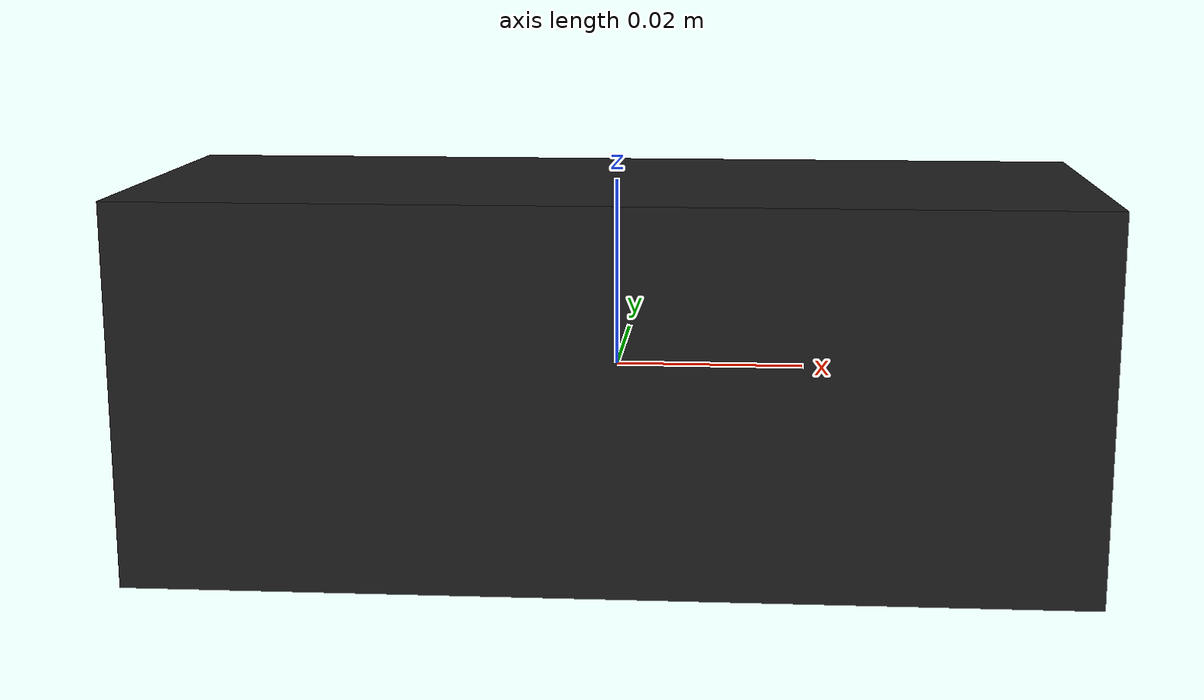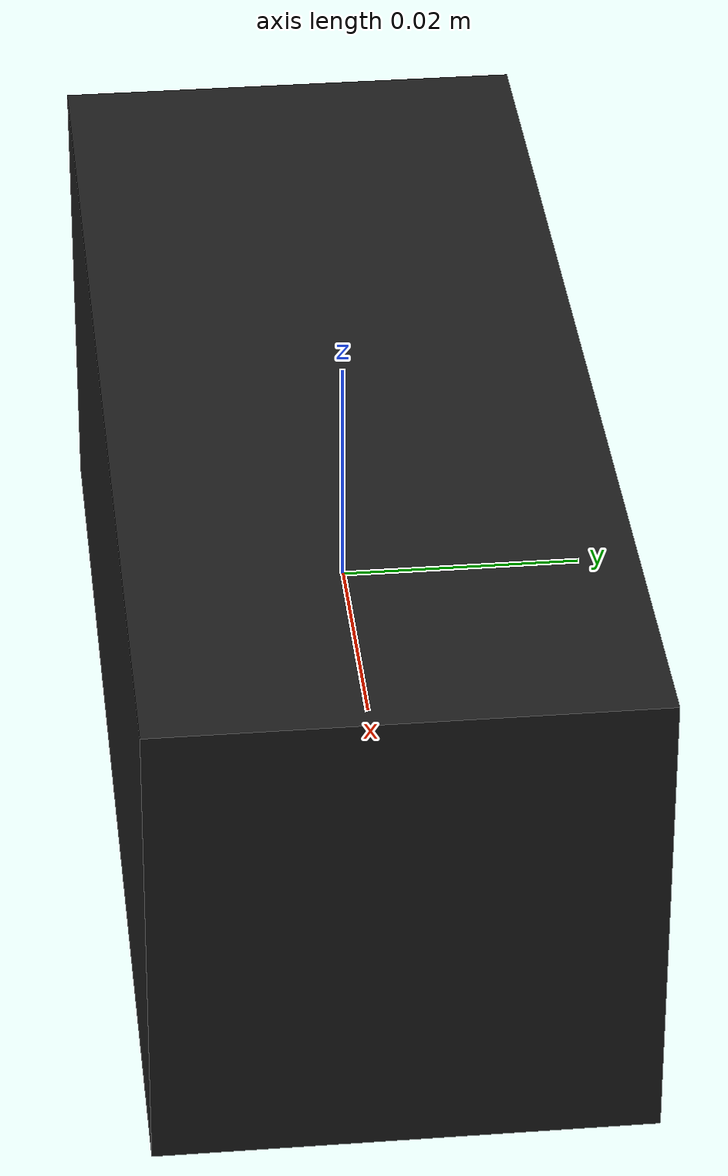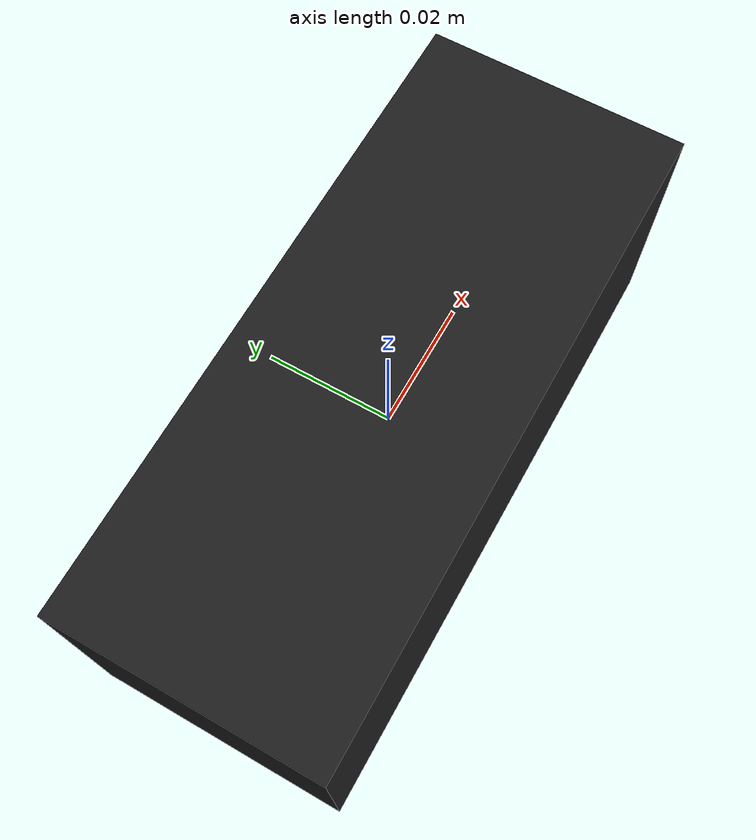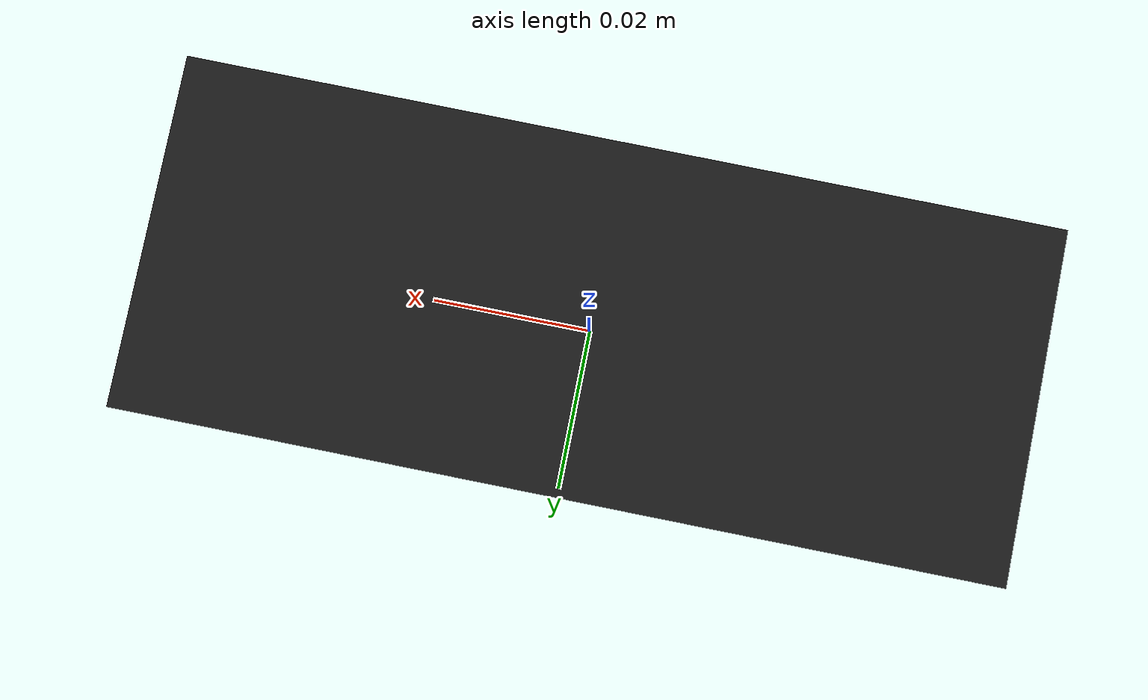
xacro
<?xml version="1.0"?>
<robot name="camera_in_sky" xmlns:xacro="http://www.ros.org/wiki/xacro">

    <xacro:property name="PI"   value="3.141592653" />
    <xacro:include filename="$(find cam_apriltag_gazebo)/urdf/xacro/camera_gazebo.xacro" />

    <!-- Camera -->
    <xacro:usb_camera prefix="camera_sky"/>

</robot>

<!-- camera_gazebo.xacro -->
<robot xmlns:xacro="http://www.ros.org/wiki/xacro" name="camera">

    <xacro:macro name="usb_camera" params="prefix:=camera">
        <!-- Create laser reference frame -->
        <link name="${prefix}_link">
            <inertial>
                <mass value="0.1" />
                <origin xyz="0 0 0" />
                <inertia ixx="1e-6" ixy="0.0" ixz="0.0"
                         iyy="1e-6" iyz="0.0"
                         izz="1e-6" />
            </inertial>

            <visual>
                <origin xyz=" 0 0 0 " rpy="0 0 0" />
                <geometry>
                    <box size="0.1 0.04 0.04" />
                </geometry>
                <material name="black"/>
            </visual>

            <collision>
                <origin xyz="0.0 0.0 0.0" rpy="0 0 0" />
                <geometry>
                    <box size="0.1 0.04 0.04" />
                </geometry>
            </collision>
        </link>
        <link name="${prefix}_link_optical" />
        <joint name="${prefix}_optical_joint" type="fixed">
            <origin rpy="-1.57079632679 0 -1.57079632679" xyz="0 0 0" />
            <parent link="${prefix}_link" />
            <child link="${prefix}_link_optical" />
        </joint>

        <gazebo reference="${prefix}_link">
            <material>Gazebo/Black</material>
        </gazebo>

        <gazebo reference="${prefix}_link">
            <sensor type="camera" name="camera_node">
                <update_rate>10.0</update_rate>
                <camera name="head">
                    <horizontal_fov>1.3962634</horizontal_fov>
                    <image>
                        <width>1800</width>
                        <height>1800</height>
                        <format>R8G8B8</format>
                    </image>
                    <clip>
                        <near>0.02</near>
                        <far>300</far>
                    </clip>
                    <noise>
                        <type>gaussian</type>
                        <mean>0.0</mean>
                        <stddev>0.007</stddev>
                    </noise>
                </camera>
                <plugin name="gazebo_camera" filename="libgazebo_ros_camera.so">
                    <alwaysOn>true</alwaysOn>
                    <updateRate>0.0</updateRate>
                    <cameraName>/${prefix}</cameraName>
                    <imageTopicName>image_raw</imageTopicName>
                    <cameraInfoTopicName>camera_info</cameraInfoTopicName>
                    <frameName>${prefix}_link_optical</frameName>
                    <hackBaseline>0.0</hackBaseline>
                    <distortionK1>0.0</distortionK1>
                    <distortionK2>0.0</distortionK2>
                    <distortionK3>0.0</distortionK3>
                    <distortionT1>0.0</distortionT1>
                    <distortionT2>0.0</distortionT2>
                </plugin>
            </sensor>
        </gazebo>

    </xacro:macro>
</robot>
